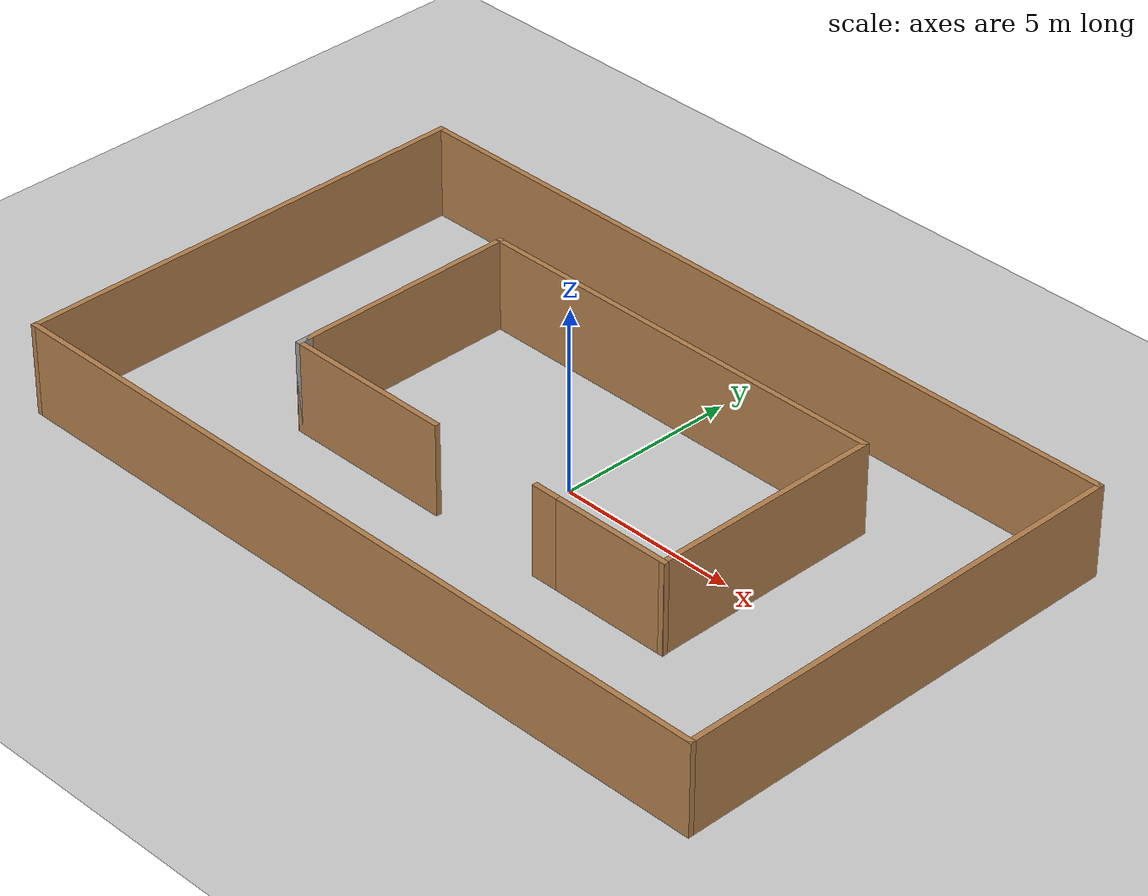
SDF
<sdf version="1.7">
 <world name="default">
  <light name="sun" type="directional">
   <pose>0 0 10 0 -0 0</pose>
   <diffuse>0.8 0.8 0.8 1</diffuse>
   <specular>0.2 0.2 0.2 1</specular>
   <attenuation>
    <range>1000</range>
    <constant>0.9</constant>
    <linear>0.01</linear>
    <quadratic>0.001</quadratic>
   </attenuation>
   <direction>-0.5 0.1 -0.9</direction>
   <spot><inner_angle>0</inner_angle><outer_angle>0</outer_angle><falloff>0</falloff></spot>
  </light>
  <model name="ground_plane">
   <static>1</static>
   <link name="link">
    <collision name="collision">
     <geometry><plane><normal>0 0 1</normal><size>100 100</size></plane></geometry>
     <surface>
      <contact><collide_bitmask>65535</collide_bitmask></contact>
      <friction><ode><mu>100</mu><mu2>50</mu2></ode></friction>
     </surface>
    </collision>
    <visual name="visual">
     <cast_shadows>0</cast_shadows>
     <geometry><plane><normal>0 0 1</normal><size>100 100</size></plane></geometry>
     <material>
      <script><uri>file://media/materials/scripts/gazebo.material</uri><name>Gazebo/Grey</name></script>
     </material>
    </visual>
   </link>
  </model>
  <gravity>0 0 -9.8</gravity>
  <magnetic_field>6e-06 2.3e-05 -4.2e-05</magnetic_field>
  <atmosphere type="adiabatic"/>
  <physics type="ode">
   <max_step_size>0.001</max_step_size>
   <real_time_factor>1</real_time_factor>
   <real_time_update_rate>1000</real_time_update_rate>
  </physics>
  <scene><ambient>0.4 0.4 0.4 1</ambient><background>0.7 0.7 0.7 1</background><shadows>1</shadows></scene>
  <spherical_coordinates>
   <surface_model>EARTH_WGS84</surface_model>
   <latitude_deg>0</latitude_deg>
   <longitude_deg>0</longitude_deg>
   <elevation>0</elevation>
   <heading_deg>0</heading_deg>
  </spherical_coordinates>
  <model name="ece">
   <pose>-0.255086 -0.285953 0 0 -0 0</pose>
   <link name="Wall_0">
    <collision name="Wall_0_Collision">
     <geometry><box><size>21.5 0.15 2.5</size></box></geometry>
     <pose>0 0 1.25 0 -0 0</pose>
    </collision>
    <visual name="Wall_0_Visual">
     <pose>0 0 1.25 0 -0 0</pose>
     <geometry><box><size>21.5 0.15 2.5</size></box></geometry>
     <material>
      <script><uri>file://media/materials/scripts/gazebo.material</uri><name>Gazebo/Wood</name></script>
      <ambient>1 1 1 1</ambient>
     </material>
     <meta><layer>0</layer></meta>
    </visual>
    <pose>0 6.425 0 0 -0 0</pose>
   </link>
   <link name="Wall_1">
    <collision name="Wall_1_Collision">
     <geometry><box><size>13 0.15 2.5</size></box></geometry>
     <pose>0 0 1.25 0 -0 0</pose>
    </collision>
    <visual name="Wall_1_Visual">
     <pose>0 0 1.25 0 -0 0</pose>
     <geometry><box><size>13 0.15 2.5</size></box></geometry>
     <material>
      <script><uri>file://media/materials/scripts/gazebo.material</uri><name>Gazebo/Wood</name></script>
      <ambient>1 1 1 1</ambient>
     </material>
     <meta><layer>0</layer></meta>
    </visual>
    <pose>10.675 -0 0 0 -0 -1.5708</pose>
   </link>
   <link name="Wall_11">
    <collision name="Wall_11_Collision">
     <geometry><box><size>0.417296 0.15 2.5</size></box></geometry>
     <pose>0 0 1.25 0 -0 0</pose>
    </collision>
    <visual name="Wall_11_Visual">
     <pose>0 0 1.25 0 -0 0</pose>
     <geometry><box><size>0.417296 0.15 2.5</size></box></geometry>
     <material>
      <script><uri>file://media/materials/scripts/gazebo.material</uri><name>Gazebo/Grey</name></script>
      <ambient>1 1 1 1</ambient>
     </material>
     <meta><layer>0</layer></meta>
    </visual>
    <pose>-5.85383 -2.34851 0 0 -0 -1.5708</pose>
   </link>
   <link name="Wall_12">
    <collision name="Wall_12_Collision">
     <geometry><box><size>4.75 0.15 2.5</size></box></geometry>
     <pose>0 0 1.25 0 -0 0</pose>
    </collision>
    <visual name="Wall_12_Visual">
     <pose>0 0 1.25 0 -0 0</pose>
     <geometry><box><size>4.75 0.15 2.5</size></box></geometry>
     <material>
      <script><uri>file://media/materials/scripts/gazebo.material</uri><name>Gazebo/Wood</name></script>
      <ambient>1 1 1 1</ambient>
     </material>
     <meta><layer>0</layer></meta>
    </visual>
    <pose>-3.53862 -2.48216 0 0 -0 0</pose>
   </link>
   <link name="Wall_14">
    <collision name="Wall_14_Collision">
     <geometry><box><size>0.75 0.15 2.5</size></box></geometry>
     <pose>0 0 1.25 0 -0 0</pose>
    </collision>
    <visual name="Wall_14_Visual">
     <pose>0 0 1.25 0 -0 0</pose>
     <geometry><box><size>0.75 0.15 2.5</size></box></geometry>
     <material>
      <script><uri>file://media/materials/scripts/gazebo.material</uri><name>Gazebo/Wood</name></script>
      <ambient>1 1 1 1</ambient>
     </material>
     <meta><layer>0</layer></meta>
    </visual>
    <pose>2.36138 -2.48007 0 0 -0 3.14159</pose>
   </link>
   <link name="Wall_2">
    <collision name="Wall_2_Collision">
     <geometry><box><size>21.5 0.15 2.5</size></box></geometry>
     <pose>0 0 1.25 0 -0 0</pose>
    </collision>
    <visual name="Wall_2_Visual">
     <pose>0 0 1.25 0 -0 0</pose>
     <geometry><box><size>21.5 0.15 2.5</size></box></geometry>
     <material>
      <script><uri>file://media/materials/scripts/gazebo.material</uri><name>Gazebo/Wood</name></script>
      <ambient>1 1 1 1</ambient>
     </material>
     <meta><layer>0</layer></meta>
    </visual>
    <pose>0 -6.425 0 0 -0 3.14159</pose>
   </link>
   <link name="Wall_3">
    <collision name="Wall_3_Collision">
     <geometry><box><size>13 0.15 2.5</size></box></geometry>
     <pose>0 0 1.25 0 -0 0</pose>
    </collision>
    <visual name="Wall_3_Visual">
     <pose>0 0 1.25 0 -0 0</pose>
     <geometry><box><size>13 0.15 2.5</size></box></geometry>
     <material>
      <script><uri>file://media/materials/scripts/gazebo.material</uri><name>Gazebo/Wood</name></script>
      <ambient>1 1 1 1</ambient>
     </material>
     <meta><layer>0</layer></meta>
    </visual>
    <pose>-10.675 -0 0 0 -0 1.5708</pose>
   </link>
   <link name="Wall_5">
    <collision name="Wall_5_Collision">
     <geometry><box><size>12 0.15 2.5</size></box></geometry>
     <pose>0 0 1.25 0 -0 0</pose>
    </collision>
    <visual name="Wall_5_Visual">
     <pose>0 0 1.25 0 -0 0</pose>
     <geometry><box><size>12 0.15 2.5</size></box></geometry>
     <material>
      <script><uri>file://media/materials/scripts/gazebo.material</uri><name>Gazebo/Wood</name></script>
      <ambient>1 1 1 1</ambient>
     </material>
     <meta><layer>0</layer></meta>
    </visual>
    <pose>0.071174 3.88514 0 0 -0 0</pose>
   </link>
   <link name="Wall_6">
    <collision name="Wall_6_Collision">
     <geometry><box><size>6.51523 0.15 2.5</size></box></geometry>
     <pose>0 0 1.25 0 -0 0</pose>
    </collision>
    <visual name="Wall_6_Visual">
     <pose>0 0 1.25 0 -0 0</pose>
     <geometry><box><size>6.51523 0.15 2.5</size></box></geometry>
     <material>
      <script><uri>file://media/materials/scripts/gazebo.material</uri><name>Gazebo/Wood</name></script>
      <ambient>1 1 1 1</ambient>
     </material>
     <meta><layer>0</layer></meta>
    </visual>
    <pose>5.99617 0.702534 0 0 -0 -1.5708</pose>
   </link>
   <link name="Wall_7">
    <collision name="Wall_7_Collision">
     <geometry><box><size>3.5 0.15 2.5</size></box></geometry>
     <pose>0 0 1.25 0 -0 0</pose>
    </collision>
    <visual name="Wall_7_Visual">
     <pose>0 0 1.25 0 -0 0</pose>
     <geometry><box><size>3.5 0.15 2.5</size></box></geometry>
     <material>
      <script><uri>file://media/materials/scripts/gazebo.material</uri><name>Gazebo/Wood</name></script>
      <ambient>1 1 1 1</ambient>
     </material>
     <meta><layer>0</layer></meta>
    </visual>
    <pose>4.33638 -2.48007 0 0 -0 3.14159</pose>
   </link>
   <link name="Wall_9">
    <collision name="Wall_9_Collision">
     <geometry><box><size>6.25 0.15 2.5</size></box></geometry>
     <pose>0 0 1.25 0 -0 0</pose>
    </collision>
    <visual name="Wall_9_Visual">
     <pose>0 0 1.25 0 -0 0</pose>
     <geometry><box><size>6.25 0.15 2.5</size></box></geometry>
     <material>
      <script><uri>file://media/materials/scripts/gazebo.material</uri><name>Gazebo/Wood</name></script>
      <ambient>1 1 1 1</ambient>
     </material>
     <meta><layer>0</layer></meta>
    </visual>
    <pose>-5.85383 0.835138 0 0 -0 -1.5708</pose>
   </link>
   <static>1</static>
  </model>
 </world>
</sdf>
